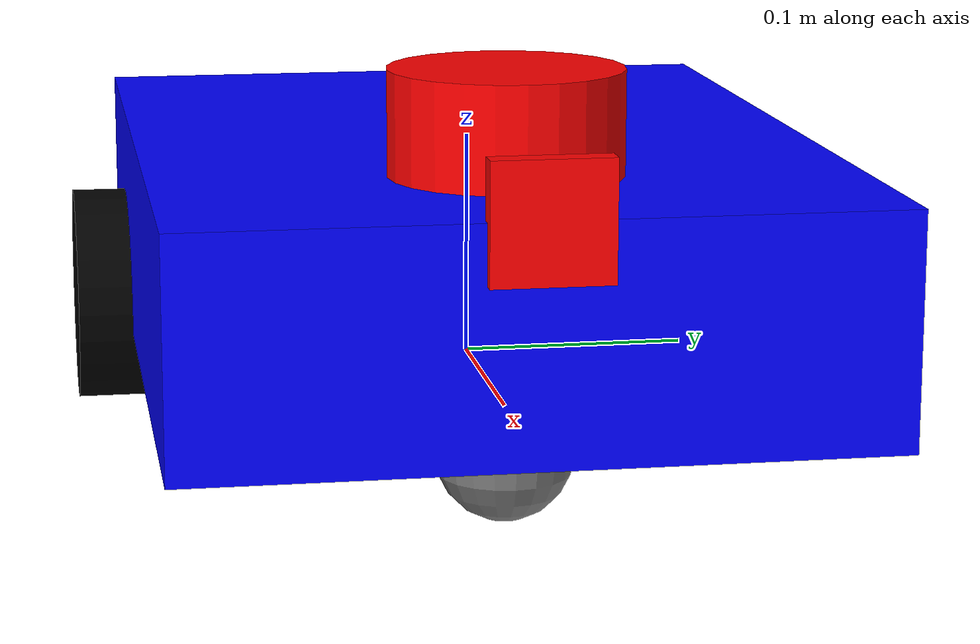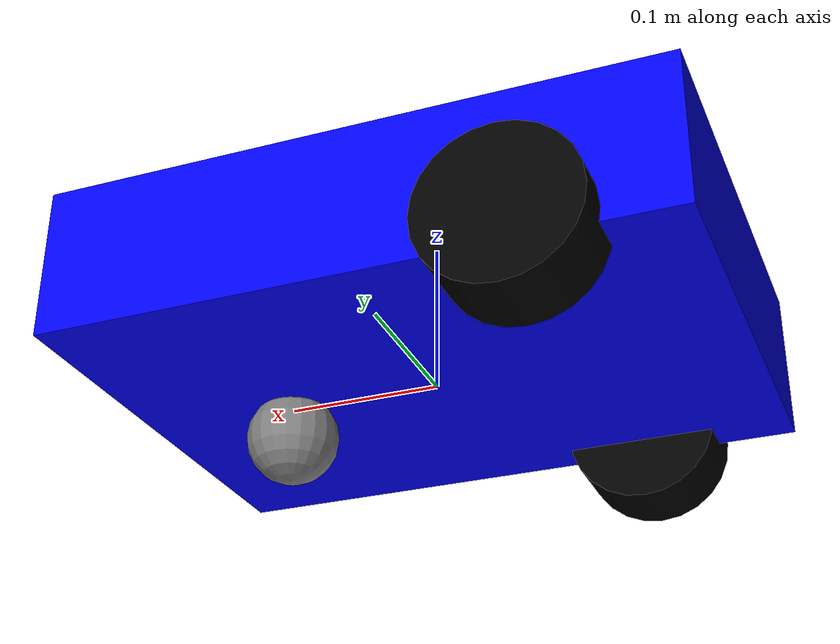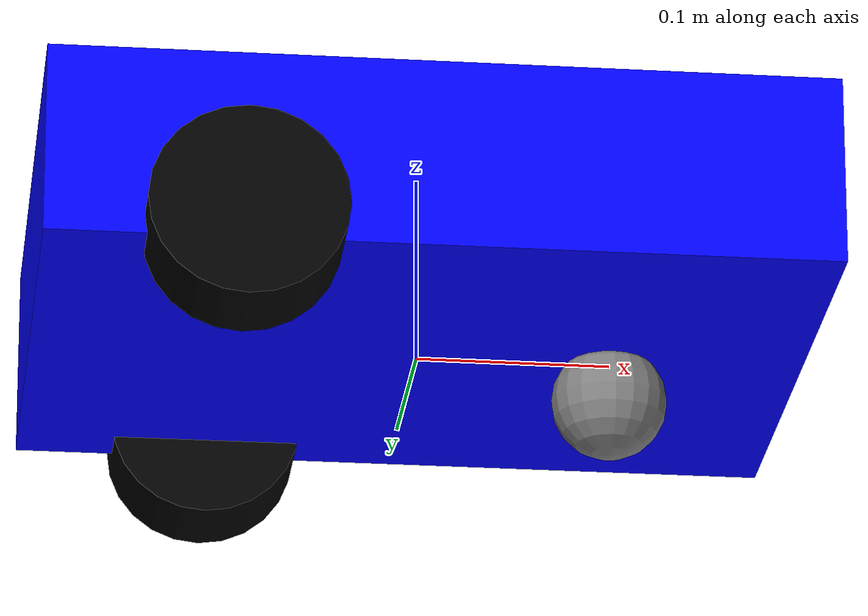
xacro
<?xml version="1.0"?>
<robot  xmlns:xacro="http://ros.org/wiki/xacro" name="diff_robot">

  <!-- Base Link (main body) -->
  <link name="base_link">
    <visual>
      <geometry>
        <box size="0.4 0.3 0.1"/>
      </geometry>
      <origin xyz="0 0 0.05"/>
      <material name="blue">
        <color rgba="0 0 1 1"/>
      </material>
    </visual>
    <collision>
      <geometry>
        <box size="0.4 0.3 0.1"/>
      </geometry>
      <origin xyz="0 0 0.05"/>
    </collision>
  </link>

  <!-- Camera Link  -->
  <link name="camera_link">
    <visual>
      <geometry>
        <box size="0.05 0.05 0.01"/>
      </geometry>
      <origin xyz="0 0 0"/>
      <material name="black">
        <color rgba="1 0 0 1"/>
      </material>
    </visual>
    <collision>
      <geometry>
        <box size="0.05 0.05 0.05"/>
      </geometry>
      <origin xyz="0 0 0.05"/>
    </collision>
  </link>

  <!-- Lidar Link  -->
  <link name="lidar_link">
    <visual>
      <geometry>
        <cylinder radius="0.05" length="0.05"/>
      </geometry>
      <origin xyz="0 0 0"/>
      <material name="black">
        <color rgba="1 0 0 1"/>
      </material>
    </visual>
    <collision>
      <geometry>
        <box size="0.05 0.05 0.05"/>
      </geometry>
      <origin xyz="0 0 0.05"/>
    </collision>
  </link>

  <!-- Left Wheel -->
  <link name="left_wheel">
    <visual>
      <geometry>
        <cylinder length="0.05" radius="0.05"/>
      </geometry>
      <origin xyz="0 0 0" rpy="0 1.5708 0"/>
      <material name="black">
        <color rgba="0 0 0 1"/>
      </material>
    </visual>
    <collision>
      <geometry>
        <cylinder length="0.05" radius="0.05"/>
      </geometry>
      <origin xyz="0 0 0" rpy="0 1.5708 0"/>
    </collision>
  </link>

  <!-- Right Wheel -->
  <link name="right_wheel">
    <visual>
      <geometry>
        <cylinder length="0.05" radius="0.05"/>
      </geometry>
      <origin xyz="0 0 0" rpy="0 1.5708 0"/>
      <material name="black">
        <color rgba="0 0 0 1"/>
      </material>
    </visual>
    <collision>
      <geometry>
        <cylinder length="0.05" radius="0.05"/>
      </geometry>
      <origin xyz="0 0 0" rpy="0 1.5708 0"/>
    </collision>
  </link>

  <!-- Caster Wheel -->
  <link name="caster_wheel">
    <visual>
      <geometry>
        <sphere radius="0.03"/>
      </geometry>
      <origin xyz="0 -0.1 0.03"/>
      <material name="gray">
        <color rgba="0.5 0.5 0.5 1"/>
      </material>
    </visual>
    <collision>
      <geometry>
        <sphere radius="0.03"/>
      </geometry>
      <origin xyz="0 -0.1 0.03"/>
    </collision>
  </link>

  <!-- Joints -->
  <joint name="left_wheel_joint" type="continuous">
    <parent link="base_link"/>
    <child link="left_wheel"/>
    <origin xyz="-0.1 0.15 0.01" rpy="0 0 1.57"/>
    <axis xyz="1 0 0"/>
  </joint>

  <joint name="right_wheel_joint" type="continuous">
    <parent link="base_link"/>
    <child link="right_wheel"/>
    <origin xyz="-0.1 -0.15 0.01" rpy="0 0 1.57"/>
    <axis xyz="1 0 0"/>
  </joint>

  <joint name="caster_joint" type="fixed">
    <parent link="base_link"/>
    <child link="caster_wheel"/>
    <origin xyz="0.0 0.0 -0.05" rpy="0 0 1.57"/>
    <axis xyz="0 1 0"/>
  </joint>

  <joint name="camera_joint" type="fixed">
    <parent link="base_link"/>
    <child link="camera_link"/>
    <origin xyz="0.2 0 0.1" rpy="0 1.57 0"/>
    <axis xyz="0 1 0"/>
  </joint>

   <joint name="lidar_joint" type="fixed">
    <parent link="base_link"/>
    <child link="lidar_link"/>
    <origin xyz="0.1 0 0.12" rpy="0 0 0"/>
    <axis xyz="0 1 0"/>
  </joint>

</robot>
